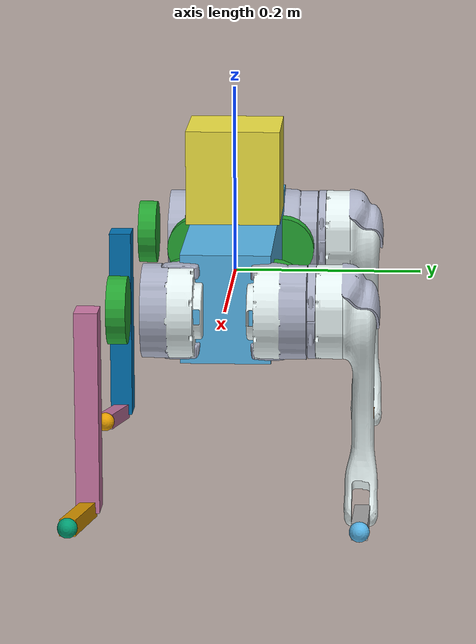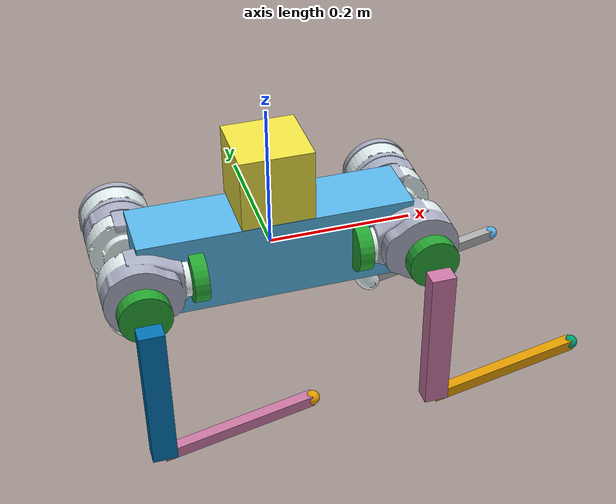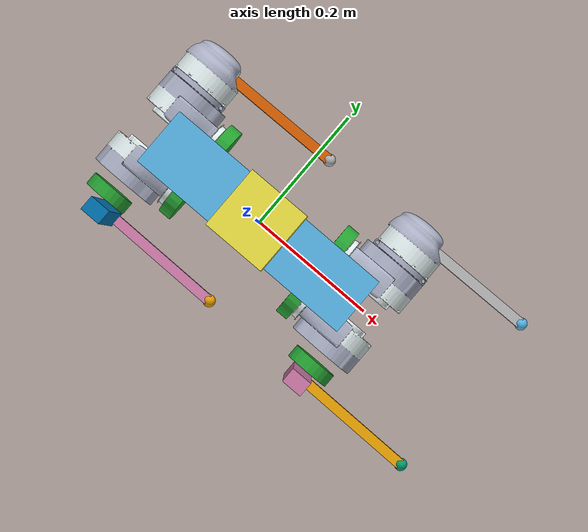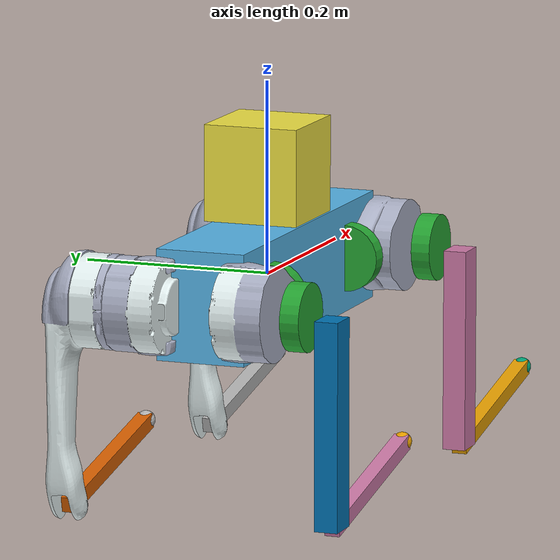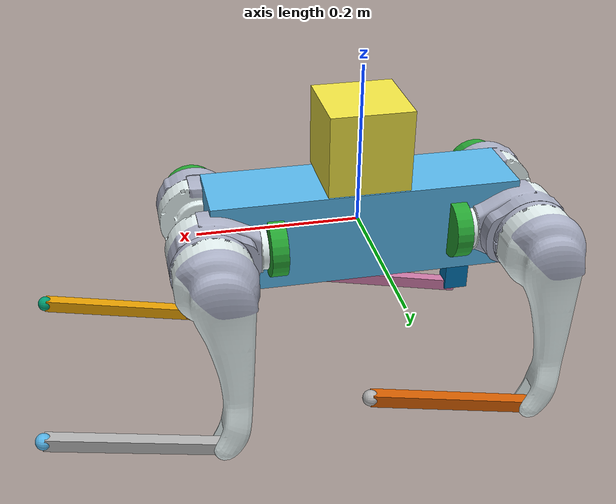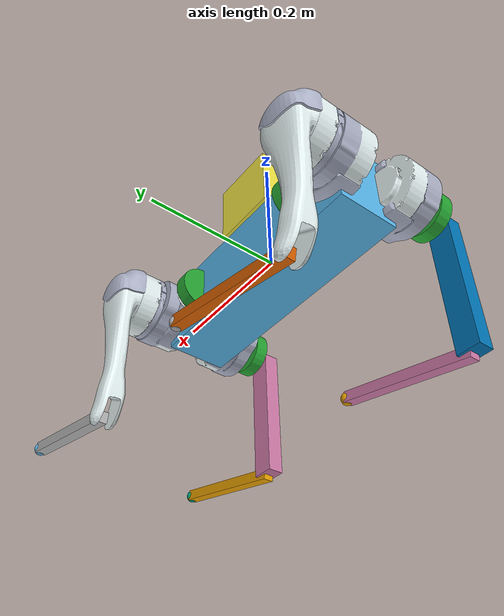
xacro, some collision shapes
<?xml version="1.0"?>

<robot name="go2" xmlns:xacro="http://www.ros.org/wiki/xacro">

    <xacro:arg name="DEBUG" default="false"/>

    <xacro:include filename="$(find go2_description)/xacro/const.xacro"/>
    <xacro:include filename="$(find go2_description)/xacro/materials.xacro"/>
    <xacro:include filename="$(find go2_description)/xacro/leg.xacro"/>
    <xacro:include filename="$(find go2_description)/xacro/gazebo.xacro"/>

    <!-- Rotor related joint and link is only for demonstrate location. -->
    <!-- Actually, the rotor will rotate and the joint is not fixed. Reduction ratio should be considered. -->

    <!-- Debug mode will hung up the robot, use "true" or "false" to switch it. -->
    <xacro:if value="$(arg DEBUG)">
        <link name="world"/>
        <joint name="base_static_joint" type="fixed">
            <origin rpy="0 0 0" xyz="0 0 0"/>
            <parent link="world"/>
            <child link="base"/>
        </joint>
    </xacro:if>

    <link name="base">
        <visual>
            <origin rpy="0 0 0" xyz="0 0 0"/>
            <geometry>
                <box size="0.001 0.001 0.001"/>
            </geometry>
        </visual>
    </link>

    <joint name="floating_base" type="fixed">
        <origin rpy="0 0 0" xyz="0 0 0"/>
        <parent link="base"/>
        <child link="trunk"/>
    </joint>

    <link name="trunk">
        <visual>
            <origin rpy="0 0 0" xyz="0 0 0"/>
            <geometry>
                <mesh filename="package://go2_description/meshes/trunk.dae" scale="1 1 1"/>
            </geometry>
        </visual>
        <collision>
            <origin rpy="0 0 0" xyz="0 0 0"/>
            <geometry>
                <box size="${trunk_length} ${trunk_width} ${trunk_height}"/>
            </geometry>
        </collision>
        <inertial>
            <origin rpy="0 0 0" xyz="${trunk_com_x} ${trunk_com_y} ${trunk_com_z}"/>
            <mass value="${trunk_mass}"/>
            <inertia
                ixx="${trunk_ixx}" ixy="${trunk_ixy}" ixz="${trunk_ixz}"
                iyy="${trunk_iyy}" iyz="${trunk_iyz}"
                izz="${trunk_izz}"/>
        </inertial>
    </link>

    <joint name="imu_joint" type="fixed">
        <parent link="trunk"/>
        <child link="imu_link"/>
        <origin rpy="0 0 0" xyz="0 0 0"/>
    </joint>

    <link name="imu_link">
        <inertial>
            <mass value="0.001"/>
            <origin rpy="0 0 0" xyz="0 0 0"/>
            <inertia ixx="0.0001" ixy="0" ixz="0" iyy="0.0001" iyz="0" izz="0.0001"/>
        </inertial>
        <visual>
            <origin rpy="0 0 0" xyz="0 0 0"/>
            <geometry>
                <box size="0.001 0.001 0.001"/>
            </geometry>
        </visual>
        <collision>
            <origin rpy="0 0 0" xyz="0 0 0"/>
            <geometry>
                <box size=".001 .001 .001"/>
            </geometry>
        </collision>
    </link>

    <link name="camera_link">
        <inertial>
            <mass value="0.1"/>
            <origin xyz="0 0 -0.09" rpy="0 0 0"/>
            <inertia ixx="0.000166667" ixy="0" ixz="0" iyy="0.000166667" iyz="0" izz="0.000166667"/>
        </inertial>

        <visual>
            <origin xyz="0 0 -0.09" rpy="0 0 0"/>
            <geometry>
                <box size="0.1 0.1 0.1"/>
            </geometry>
        </visual>

    </link>

    <joint name='camera_sensor_joint' type='fixed'>
        <parent link="trunk"/>
        <child link="camera_link"/>
        <origin xyz="0 0 0.2" rpy="0 0 0"/>
    </joint>

    <xacro:leg name="FR" mirror="-1" mirror_dae= "False" front_hind="1"  front_hind_dae="True"  />
    <xacro:leg name="FL" mirror="1"  mirror_dae="True"   front_hind="1"  front_hind_dae="True"  />
    <xacro:leg name="RR" mirror="-1" mirror_dae="False"  front_hind="-1" front_hind_dae="False" />
    <xacro:leg name="RL" mirror="1"  mirror_dae="True"   front_hind="-1" front_hind_dae="False" />
</robot>

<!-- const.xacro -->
<robot xmlns:xacro="http://www.ros.org/wiki/xacro">

    <!-- Constants for robot dimensions -->
    <xacro:property name="PI" value="3.1415926535897931"/>
    <xacro:property name="stick_mass" value="0.00001"/>

    <!-- simplified collision value -->
    <xacro:property name="trunk_width" value="0.0935"/>
    <xacro:property name="trunk_length" value="0.3762"/>
    <xacro:property name="trunk_height" value="0.114"/>
    <xacro:property name="hip_radius" value="0.046"/>
    <xacro:property name="hip_length" value="0.04"/>
    <xacro:property name="thigh_shoulder_radius" value="0.041"/>
    <xacro:property name="thigh_shoulder_length" value="0.032"/>
    <xacro:property name="thigh_width" value="0.0245"/>
    <xacro:property name="thigh_height" value="0.034"/>
    <xacro:property name="calf_width" value="0.016"/>
    <xacro:property name="calf_height" value="0.016"/>
    <xacro:property name="foot_radius" value="0.02"/>
    <xacro:property name="stick_radius" value="0.01"/>
    <xacro:property name="stick_length" value="0.2"/>

    <!-- kinematic value -->
    <xacro:property name="thigh_offset" value="0.0955"/>
    <xacro:property name="thigh_length" value="0.213"/>
    <xacro:property name="calf_length" value="0.213"/>

    <!-- leg offset from trunk center value -->
    <xacro:property name="leg_offset_x" value="0.1934"/>
    <xacro:property name="leg_offset_y" value="0.0465"/>
    <xacro:property name="hip_offset" value="0.0955"/>

    <!-- offset of link locations (left front) -->
    <xacro:property name="hip_offset_x" value="0.1934"/>
    <xacro:property name="hip_offset_y" value="0.0465"/>
    <xacro:property name="hip_offset_z" value="0.0"/>
    <xacro:property name="hip_rotor_offset_x" value="0.11215"/>
    <xacro:property name="hip_rotor_offset_y" value="0.04675"/>
    <xacro:property name="hip_rotor_offset_z" value="0.0"/>

    <xacro:property name="thigh_offset_x" value="0"/>
    <xacro:property name="thigh_offset_y" value="0.0955"/>
    <xacro:property name="thigh_offset_z" value="0.0"/>
    <xacro:property name="thigh_rotor_offset_x" value="0.0"/>
    <xacro:property name="thigh_rotor_offset_y" value="-0.00015"/>
    <xacro:property name="thigh_rotor_offset_z" value="0.0"/>

    <xacro:property name="calf_offset_x" value="0.0"/>
    <xacro:property name="calf_offset_y" value="0.0"/>
    <xacro:property name="calf_offset_z" value="-0.213"/>
    <xacro:property name="calf_rotor_offset_x" value="0.0"/>
    <xacro:property name="calf_rotor_offset_y" value="-0.03235"/>
    <xacro:property name="calf_rotor_offset_z" value="0.0"/>

    <!-- joint limits -->
    <xacro:property name="damping" value="0.0"/>
    <xacro:property name="friction" value="0.0"/>
    <xacro:property name="hip_position_max" value="1.0472"/>
    <xacro:property name="hip_position_min" value="-1.0472"/>
    <xacro:property name="hip_velocity_max" value="30.1"/>
    <xacro:property name="hip_torque_max" value="23.7"/>
    <xacro:property name="thigh_position_max" value="3.4907"/>
    <xacro:property name="thigh_position_min" value="-1.5708"/>
    <xacro:property name="thigh_velocity_max" value="30.1"/>
    <xacro:property name="thigh_torque_max" value="23.7"/>
    <xacro:property name="calf_position_max" value="-0.83776"/>
    <xacro:property name="calf_position_min" value="-2.7227"/>
    <xacro:property name="calf_velocity_max" value="20.06"/>
    <xacro:property name="calf_torque_max" value="35.55"/>

    <!-- dynamics inertial value -->
    <!-- trunk -->
    <xacro:property name="trunk_mass" value="6.921"/>
    <xacro:property name="trunk_com_x" value="0.021112"/>
    <xacro:property name="trunk_com_y" value="0.00"/>
    <xacro:property name="trunk_com_z" value="-0.005366"/>
    <xacro:property name="trunk_ixx" value="0.02448"/>
    <xacro:property name="trunk_ixy" value="0.00012166"/>
    <xacro:property name="trunk_ixz" value="0.0014849"/>
    <xacro:property name="trunk_iyy" value="0.098077"/>
    <xacro:property name="trunk_iyz" value="-3.12E-05"/>
    <xacro:property name="trunk_izz" value="0.107"/>

    <!-- hip (left front) -->
    <xacro:property name="hip_mass" value="0.678"/>
    <xacro:property name="hip_com_x" value="-0.0054"/>
    <xacro:property name="hip_com_y" value="0.00194"/>
    <xacro:property name="hip_com_z" value="-0.000105"/>
    <xacro:property name="hip_ixx" value="0.00048"/>
    <xacro:property name="hip_ixy" value="-3.01E-06"/>
    <xacro:property name="hip_ixz" value="1.11E-06"/>
    <xacro:property name="hip_iyy" value="0.000884"/>
    <xacro:property name="hip_iyz" value="-1.42E-06"/>
    <xacro:property name="hip_izz" value="0.000596"/>

    <xacro:property name="hip_rotor_mass" value="0.089"/>
    <xacro:property name="hip_rotor_com_x" value="0.0"/>
    <xacro:property name="hip_rotor_com_y" value="0.0"/>
    <xacro:property name="hip_rotor_com_z" value="0.0"/>
    <xacro:property name="hip_rotor_ixx" value="0.000111842"/>
    <xacro:property name="hip_rotor_ixy" value="0.0"/>
    <xacro:property name="hip_rotor_ixz" value="0.0"/>
    <xacro:property name="hip_rotor_iyy" value="0.000059647"/>
    <xacro:property name="hip_rotor_iyz" value="0.0"/>
    <xacro:property name="hip_rotor_izz" value="0.000059647"/>

    <!-- thigh -->
    <xacro:property name="thigh_mass" value="1.152"/>
    <xacro:property name="thigh_com_x" value="-0.00374"/>
    <xacro:property name="thigh_com_y" value="-0.0223"/>
    <xacro:property name="thigh_com_z" value="-0.0327"/>
    <xacro:property name="thigh_ixx" value="0.00584"/>
    <xacro:property name="thigh_ixy" value="8.72E-05"/>
    <xacro:property name="thigh_ixz" value="-0.000289"/>
    <xacro:property name="thigh_iyy" value="0.0058"/>
    <xacro:property name="thigh_iyz" value="0.000808"/>
    <xacro:property name="thigh_izz" value="0.00103"/>

    <xacro:property name="thigh_rotor_mass" value="0.089"/>
    <xacro:property name="thigh_rotor_com_x" value="0.0"/>
    <xacro:property name="thigh_rotor_com_y" value="0.0"/>
    <xacro:property name="thigh_rotor_com_z" value="0.0"/>
    <xacro:property name="thigh_rotor_ixx" value="0.000059647"/>
    <xacro:property name="thigh_rotor_ixy" value="0.0"/>
    <xacro:property name="thigh_rotor_ixz" value="0.0"/>
    <xacro:property name="thigh_rotor_iyy" value="0.000111842"/>
    <xacro:property name="thigh_rotor_iyz" value="0.0"/>
    <xacro:property name="thigh_rotor_izz" value="0.000059647"/>

    <!-- calf -->
    <xacro:property name="calf_mass" value="0.154"/>
    <xacro:property name="calf_com_x" value="0.00548"/>
    <xacro:property name="calf_com_y" value="-0.000975"/>
    <xacro:property name="calf_com_z" value="-0.115"/>
    <xacro:property name="calf_ixx" value="0.00108"/>
    <xacro:property name="calf_ixy" value="3.4E-07"/>
    <xacro:property name="calf_ixz" value="1.72E-05"/>
    <xacro:property name="calf_iyy" value="0.0011"/>
    <xacro:property name="calf_iyz" value="8.28E-06"/>
    <xacro:property name="calf_izz" value="3.29E-05"/>

    <xacro:property name="calf_rotor_mass" value="0.089"/>
    <xacro:property name="calf_rotor_com_x" value="0.0"/>
    <xacro:property name="calf_rotor_com_y" value="0.0"/>
    <xacro:property name="calf_rotor_com_z" value="0.0"/>
    <xacro:property name="calf_rotor_ixx" value="0.000059647"/>
    <xacro:property name="calf_rotor_ixy" value="0.0"/>
    <xacro:property name="calf_rotor_ixz" value="0.0"/>
    <xacro:property name="calf_rotor_iyy" value="0.000111842"/>
    <xacro:property name="calf_rotor_iyz" value="0.0"/>
    <xacro:property name="calf_rotor_izz" value="0.000059647"/>

    <!-- foot -->
    <xacro:property name="foot_mass" value="0.06"/>

</robot>

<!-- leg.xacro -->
<robot xmlns:xacro="http://www.ros.org/wiki/xacro">

    <xacro:include filename="$(find go2_description)/xacro/transmission.xacro"/>

    <xacro:macro name="leg" params="name mirror mirror_dae front_hind front_hind_dae">

        <joint name="${name}_hip_joint" type="revolute">
            <xacro:if value="${(mirror_dae == False) and (front_hind_dae == True)}">
                <origin rpy="0 0 0" xyz="${leg_offset_x} ${-leg_offset_y} 0"/>
            </xacro:if>
            <xacro:if value="${(mirror_dae == True) and (front_hind_dae == True)}">
                <origin rpy="0 0 0" xyz="${leg_offset_x} ${leg_offset_y} 0"/>
            </xacro:if>
            <xacro:if value="${(mirror_dae == False) and (front_hind_dae == False)}">
                <origin rpy="0 0 0" xyz="${-leg_offset_x} ${-leg_offset_y} 0"/>
            </xacro:if>
            <xacro:if value="${(mirror_dae == True) and (front_hind_dae == False)}">
                <origin rpy="0 0 0" xyz="${-leg_offset_x} ${leg_offset_y} 0"/>
            </xacro:if>
            <parent link="trunk"/>
            <child link="${name}_hip"/>
            <axis xyz="1 0 0"/>
            <dynamics damping="${damping}" friction="${friction}"/>
            <xacro:if value="${(mirror_dae == True)}">
                <limit effort="${hip_torque_max}" velocity="${hip_velocity_max}" lower="${hip_position_min}" upper="${hip_position_max}"/>
            </xacro:if>
            <xacro:if value="${(mirror_dae == False)}">
                <limit effort="${hip_torque_max}" velocity="${hip_velocity_max}" lower="${-hip_position_max}" upper="${-hip_position_min}"/>
            </xacro:if>
        </joint>

        <joint name="${name}_hip_rotor_joint" type="fixed">
            <xacro:if value="${(mirror_dae == False) and (front_hind_dae == True)}">
                <origin rpy="0 0 0" xyz="${hip_rotor_offset_x} ${-hip_rotor_offset_y} 0"/>
            </xacro:if>
            <xacro:if value="${(mirror_dae == True) and (front_hind_dae == True)}">
                <origin rpy="0 0 0" xyz="${hip_rotor_offset_x} ${hip_rotor_offset_y} 0"/>
            </xacro:if>
            <xacro:if value="${(mirror_dae == False) and (front_hind_dae == False)}">
                <origin rpy="0 0 0" xyz="${-hip_rotor_offset_x} ${-hip_rotor_offset_y} 0"/>
            </xacro:if>
            <xacro:if value="${(mirror_dae == True) and (front_hind_dae == False)}">
                <origin rpy="0 0 0" xyz="${-hip_rotor_offset_x} ${hip_rotor_offset_y} 0"/>
            </xacro:if>
            <parent link="trunk"/>
            <child link="${name}_hip_rotor"/>
        </joint>

        <link name="${name}_hip">
            <visual>
                <xacro:if value="${(mirror_dae == True) and (front_hind_dae == True)}">
                    <origin rpy="0 0 0" xyz="0 0 0"/>
                </xacro:if>
                <xacro:if value="${(mirror_dae == False) and (front_hind_dae == True)}">
                    <origin rpy="${PI} 0 0" xyz="0 0 0"/>
                </xacro:if>
                <xacro:if value="${(mirror_dae == True) and (front_hind_dae == False)}">
                    <origin rpy="0 ${PI} 0" xyz="0 0 0"/>
                </xacro:if>
                <xacro:if value="${(mirror_dae == False) and (front_hind_dae == False)}">
                    <origin rpy="${PI} ${PI} 0" xyz="0 0 0"/>
                </xacro:if>
                <geometry>
                    <mesh filename="package://go2_description/meshes/hip.dae" scale="1 1 1"/>
                </geometry>
            </visual>
            <collision>
                <origin rpy="${PI/2.0} 0 0" xyz="0 ${hip_offset*mirror} 0"/>
                <geometry>
                    <cylinder length="${hip_length}" radius="${hip_radius}"/>
                </geometry>
            </collision>
            <inertial>
                <origin rpy="0 0 0" xyz="${hip_com_x*front_hind} ${hip_com_y*mirror} ${hip_com_z}"/>
                <mass value="${hip_mass}"/>
                <inertia
                    ixx="${hip_ixx}" ixy="${hip_ixy*mirror*front_hind}" ixz="${hip_ixz*front_hind}"
                    iyy="${hip_iyy}" iyz="${hip_iyz*mirror}"
                    izz="${hip_izz}"/>
            </inertial>
        </link>

        <link name="${name}_hip_rotor">
            <visual>
                <origin rpy="0 ${PI/2.0} 0" xyz="0 0 0"/>
                <geometry>
                    <cylinder length="0.02" radius="0.035"/>
                </geometry>
                <material name="green"/>
            </visual>
            <inertial>
                <origin rpy="0 0 0" xyz="${hip_rotor_com_x} ${hip_rotor_com_y} ${hip_rotor_com_z}"/>
                <mass value="${hip_rotor_mass}"/>
                <inertia
                    ixx="${hip_rotor_ixx}" ixy="${hip_rotor_ixy}" ixz="${hip_rotor_ixz}"
                    iyy="${hip_rotor_iyy}" iyz="${hip_rotor_iyz}"
                    izz="${hip_rotor_izz}"/>
            </inertial>
        </link>

        <joint name="${name}_thigh_joint" type="revolute">
            <origin rpy="0 0 0" xyz="0 ${thigh_offset*mirror} 0"/>
            <parent link="${name}_hip"/>
            <child link="${name}_thigh"/>
            <axis xyz="0 1 0"/>
            <dynamics damping="${damping}" friction="${friction}"/>
            <limit effort="${thigh_torque_max}" velocity="${thigh_velocity_max}" lower="${thigh_position_min}" upper="${thigh_position_max}"/>
        </joint>

        <joint name="${name}_thigh_rotor_joint" type="fixed">
            <origin rpy="0 0 0" xyz="${thigh_rotor_offset_x} ${thigh_rotor_offset_y*mirror} 0"/>
            <parent link="${name}_hip"/>
            <child link="${name}_thigh_rotor"/>
        </joint>

        <link name="${name}_thigh">
            <visual>
                <origin rpy="0 0 0" xyz="0 0 0"/>
                <geometry>
                    <xacro:if value="${mirror_dae == True}">
                        <mesh filename="package://go2_description/meshes/thigh.dae" scale="1 1 1"/>
                    </xacro:if>
                    <xacro:if value="${mirror_dae == False}">
                        <mesh filename="package://go2_description/meshes/thigh_mirror.dae" scale="1 1 1"/>
                    </xacro:if>
                </geometry>
            </visual>
            <collision>
                <origin rpy="0 ${PI/2.0} 0" xyz="0 0 ${-thigh_length/2.0}"/>
                <geometry>
                    <box size="${thigh_length} ${thigh_width} ${thigh_height}"/>
                </geometry>
            </collision>
            <inertial>
                <origin rpy="0 0 0" xyz="${thigh_com_x} ${thigh_com_y*mirror} ${thigh_com_z}"/>
                <mass value="${thigh_mass}"/>
                <inertia
                    ixx="${thigh_ixx}" ixy="${thigh_ixy*mirror}" ixz="${thigh_ixz}"
                    iyy="${thigh_iyy}" iyz="${thigh_iyz*mirror}"
                    izz="${thigh_izz}"/>
            </inertial>
        </link>

        <link name="${name}_thigh_rotor">
            <visual>
                <origin rpy="${PI/2.0} 0 0" xyz="0 0 0"/>
                <geometry>
                    <cylinder length="0.02" radius="0.035"/>
                </geometry>
                <material name="green"/>
            </visual>
            <inertial>
                <origin rpy="0 0 0" xyz="${thigh_rotor_com_x} ${thigh_rotor_com_y} ${thigh_rotor_com_z}"/>
                <mass value="${thigh_rotor_mass}"/>
                <inertia
                    ixx="${thigh_rotor_ixx}" ixy="${thigh_rotor_ixy}" ixz="${thigh_rotor_ixz}"
                    iyy="${thigh_rotor_iyy}" iyz="${thigh_rotor_iyz}"
                    izz="${thigh_rotor_izz}"/>
            </inertial>
        </link>

        <joint name="${name}_calf_joint" type="revolute">
            <origin rpy="0 0 0" xyz="0 0 ${-thigh_length}"/>
            <parent link="${name}_thigh"/>
            <child link="${name}_calf"/>
            <axis xyz="0 1 0"/>
            <dynamics damping="${damping}" friction="${friction}"/>
            <limit effort="${calf_torque_max}" velocity="${calf_velocity_max}" lower="${calf_position_min}" upper="${calf_position_max}"/>
        </joint>

        <joint name="${name}_calf_rotor_joint" type="fixed">
            <origin rpy="0 0 0" xyz="${calf_rotor_offset_x} ${calf_rotor_offset_y*mirror} 0"/>
            <parent link="${name}_thigh"/>
            <child link="${name}_calf_rotor"/>
        </joint>

        <link name="${name}_calf">
            <visual>
                <origin rpy="0 0 0" xyz="0 0 0"/>
                <geometry>
                    <mesh filename="package://go2_description/meshes/calf.dae" scale="1 1 1"/>
                </geometry>
            </visual>
            <collision>
                <origin rpy="0 ${PI/2.0} 0" xyz="0 0 ${-calf_length/2.0}"/>
                <geometry>
                    <box size="${calf_length} ${calf_width} ${calf_height}"/>
                </geometry>
            </collision>
            <inertial>
                <origin rpy="0 0 0" xyz="${calf_com_x} ${calf_com_y} ${calf_com_z}"/>
                <mass value="${calf_mass}"/>
                <inertia
                    ixx="${calf_ixx}" ixy="${calf_ixy}" ixz="${calf_ixz}"
                    iyy="${calf_iyy}" iyz="${calf_iyz}"
                    izz="${calf_izz}"/>
            </inertial>
        </link>

        <link name="${name}_calf_rotor">
            <visual>
                <origin rpy="${PI/2.0} 0 0" xyz="0 0 0"/>
                <geometry>
                    <cylinder length="0.02" radius="0.035"/>
                </geometry>
                <material name="green"/>
            </visual>
            <inertial>
                <origin rpy="0 0 0" xyz="${calf_rotor_com_x} ${calf_rotor_com_y} ${calf_rotor_com_z}"/>
                <mass value="${calf_rotor_mass}"/>
                <inertia
                    ixx="${calf_rotor_ixx}" ixy="${calf_rotor_ixy}" ixz="${calf_rotor_ixz}"
                    iyy="${calf_rotor_iyy}" iyz="${calf_rotor_iyz}"
                    izz="${calf_rotor_izz}"/>
            </inertial>
        </link>

        <joint name="${name}_foot_fixed" type="fixed">
            <origin rpy="0 0 0" xyz="0 0 ${-(calf_length)}"/>
            <parent link="${name}_calf"/>
            <child link="${name}_foot"/>
        </joint>

        <link name="${name}_foot">
            <visual>
                <origin rpy="0 0 0" xyz="0 0 0"/>
                <geometry>
                    <sphere radius="${foot_radius-0.01}"/>
                </geometry>
            </visual>
            <collision>
                <origin rpy="0 0 0" xyz="0 0 0"/>
                <geometry>
                    <sphere radius="${foot_radius}"/>
                </geometry>
            </collision>
            <inertial>
                <mass value="${foot_mass}"/>
                <inertia
                    ixx="${(2*foot_mass)/5.0*(foot_radius*foot_radius)}" ixy="0.0" ixz="0.0"
                    iyy="${(2*foot_mass)/5.0*(foot_radius*foot_radius)}" iyz="0.0"
                    izz="${(2*foot_mass)/5.0*(foot_radius*foot_radius)}"/>
            </inertial>
        </link>

        <xacro:leg_transmission name="${name}"/>
    </xacro:macro>
</robot>
